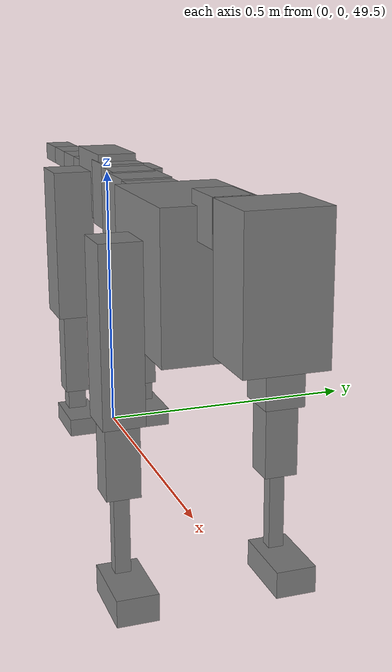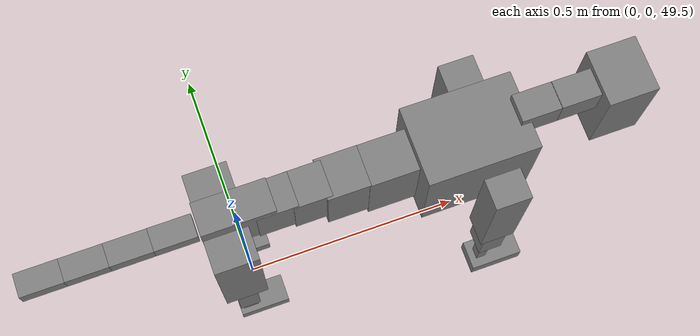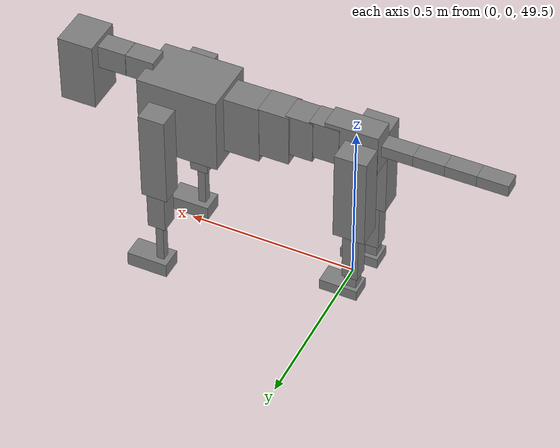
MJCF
<mujoco model="dog">

    <default>
        <joint armature="0.02" stiffness="1" damping="0.2" limited="true"/>
        <geom condim="3" friction="1 0.05 0.05" margin="0.01"/>
        <motor ctrllimited="true" ctrlrange="-1.0 1.0" forcelimited="true" gear="50"/>
    </default>

    <compiler inertiafromgeom="true" angle="radian"/>

    <option timestep="0.016" iterations="50" tolerance="1e-10" solver="Newton" jacobian="dense" cone="pyramidal"/>

    <size nconmax="20000" njmax="60000" nstack="5000000"/>
    <visual>
        <map force="0.1" zfar="30"/>
        <rgba haze="0.15 0.25 0.35 1"/>
        <quality shadowsize="2048"/>
        <global offwidth="800" offheight="800"/>
    </visual>

    <asset>
        <texture type="skybox" builtin="gradient" rgb1="0.3 0.5 0.7" rgb2="0 0 0" width="512" height="512"/>
        <texture name="texplane" type="2d" builtin="checker" rgb1=".2 .3 .4" rgb2=".1 0.15 0.2" width="512" height="512"
                 mark="cross" markrgb=".8 .8 .8"/>
        <texture name="texgeom" type="cube" builtin="flat" mark="cross" width="127" height="1278" rgb1="0.8 0.6 0.4"
                 rgb2="0.8 0.6 0.4" markrgb="1 1 1" random="0.01"/>

        <material name="matplane" reflectance="0.3" texture="texplane" texrepeat="1 1" texuniform="true"/>
        <material name="matgeom" texture="texgeom" texuniform="true" rgba="0.8 0.6 .4 1"/>
    </asset>

    <worldbody>
        <geom name="floor" pos="0 0 0" size="0 0 .25" type="plane" material="matplane" condim="3"/>

        <light directional="false" diffuse=".2 .2 .2" specular="0 0 0" pos="0 0 5" dir="0 0 -1" castshadow="false"/>
        <light mode="targetbodycom" target="torso" directional="false" diffuse=".8 .8 .8" specular="0.3 0.3 0.3"
               pos="0 0 4.0" dir="0 0 -1"/>

        <body name="root" pos="0 0 50">
            <freejoint name="root_1"/>
            <geom type="box" pos="0 0 -0.02" size="0.0774  0.0358  0.063" density="2030"/>

            <body name="spine1" pos="0.054 0 0">
                <joint name="spine1_y" axis="0 1 0" range="0 0.7" limited="true"/>
                <geom type="box" pos="0.02375 0 -0.03" size="0.04375  0.0375  0.05985" density="2030"/>

                <body name="spine2" pos="0.0612 0 0">
                    <joint name="spine2_y" axis="0 1 0" range="-0.15 0.15" limited="true"/>
                    <geom type="box" pos="0.03555  0  -0.04" size="0.04055  0.039  0.06615" density="2030"/>

                    <body name="spine3" pos="0.0730 0 0">
                        <joint name="spine3_y" axis="0 1 0" range="-0.15 0.15" limited="true"/>
                        <geom type="box" pos="0.03555  0  -0.057" size="0.04555  0.0445  0.081" density="2030"/>

                        <body name="spine4" pos="0.0780 0 0">
                            <joint name="spine4_y" axis="0 1 0" range="-0.15 0.15" limited="true"/>
                            <geom type="box" pos="0.05265  0  -0.07" size="0.05265  0.045  0.09135" density="2030"/>

                            <body name="torso" pos="0.1082 0 0">
                                <joint name="torso_y" axis="0 1 0" range="-0.15 0.15" limited="true"/>
                                <geom type="box" pos="0.11925  0  -0.085" size="0.11925  0.085  0.11745"
                                      density="2030"/>

                                <body name="neck1" pos="0.2160  0   0.0180">
                                    <joint name="neck1_y" axis="0 1 0" range="-1.2  -1" limited="true"/>
                                    <geom type="box" pos="0.0423  0  0" size="0.0423  0.03  0.036" density="2325"/>

                                    <body name="neck2" pos="0.0853  0  0">
                                        <joint name="neck2_y" axis="0 1 0" range="0.1  0" limited="true"/>
                                        <geom type="box" pos="0.0423  0  0" size="0.0423  0.03  0.036" density="2325"/>

                                        <body name="head" pos="0.0853  0  0">
                                            <joint name="head_y" axis="0 1 0" range="-0.3  -0.2" limited="true"/>
                                            <geom type="box" pos="0.0531  0  -0.055" size="0.0531  0.06  0.1044"
                                                  density="4030"/>

                                        </body>
                                    </body>
                                </body>

                                <body name="front_shoulder" pos="0.156  0   -0.0480">
                                    <joint name="front_shoulder_y" axis="0 1 0" range="-1 1.5" limited="true"/>
                                    <geom type="box" pos="0 0.13 -0.1145" size="0.0390  0.0333  0.1411" density="1158"/>
                                    <geom type="box" pos="0 -0.13 -0.1145" size="0.0390  0.0333  0.1411"
                                          density="1158"/>

                                    <body name="front_elbow" pos="0  0  -0.2290">
                                        <joint name="front_elbow_y" axis="0 1 0" range="-2 0" limited="true"/>
                                        <geom type="box" pos="0 0.13 -0.0727" size="0.0269  0.0275  0.0727"
                                              density="1081"/>
                                        <geom type="box" pos="0 -0.13 -0.0727" size="0.0269  0.0275  0.0727"
                                              density="1081"/>

                                        <body name="front_wrist" pos="0  0  -0.1454">
                                            <joint name="front_wrist_y" axis="0 1 0" range="-0.2 0" limited="true"/>
                                            <geom type="box" pos="0 0.13 -0.0728" size="0.0115  0.0128  0.0859"
                                                  density="1664"/>
                                            <geom type="box" pos="0 -0.13 -0.0728" size="0.0115  0.0128  0.0859"
                                                  density="1664"/>

                                            <body name="front_finger_end" pos="0  0  -0.1456">
                                                <joint name="front_finger_y" axis="0 1 0" range="-0.4 1"
                                                       limited="true"/>
                                                <geom type="box" pos="0.0335  0.13  -0.0074"
                                                      size="0.0615  0.0335  0.0224" density="1515"/>
                                                <geom type="box" pos="0.0335  -0.13  -0.0074"
                                                      size="0.0615  0.0335  0.0224" density="1515"/>

                                            </body>

                                        </body>
                                    </body>
                                </body>

                            </body>
                        </body>
                    </body>
                </body>
            </body>

            <body name="back_hip" pos="-0.03 0 -0.018">
                <joint name="back_hip_y" axis="0 1 0" range="-1.5 0.3" limited="true"/>
                <geom type="box" pos="0 0.07 -0.1187" size="0.0465  0.0364  0.1415" density="1154"/>
                <geom type="box" pos="0 -0.07 -0.1187" size="0.0465  0.0364  0.1415" density="1154"/>

                <body name="back_knee" pos="0  0  -0.2374">
                    <joint name="back_knee_y" axis="0 1 0" range="0 2.8" limited="true"/>
                    <geom type="box" pos="0 0.07 -0.0826" size="0.0234  0.0230  0.0982" density="1227"/>
                    <geom type="box" pos="0 -0.07 -0.0826" size="0.0234  0.0230  0.0982" density="1227"/>

                    <body name="back_ankle" pos="0  0  -0.1653">
                        <joint name="back_ankle_y" axis="0 1 0" range="-2.2 0" limited="true"/>
                        <geom type="box" pos="0 0.07 -0.0336" size="0.0174  0.0174  0.0449" density="1284"/>
                        <geom type="box" pos="0 -0.07 -0.0336" size="0.0174  0.0174  0.0449" density="1284"/>

                        <body name="back_toe_end" pos="0  0  -0.0672">
                            <joint name="back_toe_y" axis="0 1 0" range="-0.4 1" limited="true"/>
                            <geom type="box" pos="0.0307  0.07  -0.0017" size="0.0563  0.0307  0.0167" density="1515"/>
                            <geom type="box" pos="0.0307  -0.07  -0.0017" size="0.0563  0.0307  0.0167" density="1515"/>

                        </body>
                    </body>
                </body>
            </body>

            <body name="tail1" pos="-0.074 0 -0.006">
                <joint name="tail1_y" axis="0 1 0" range="-0.2 0.2" limited="true"/>
                <geom type="box" pos="-0.0536  0  0" size="0.045  0.025  0.0175" density="1587"/>

                <body name="tail2" pos="-0.09 0 0">
                    <joint name="tail2_y" axis="0 1 0" range="-0.2 0.2" limited="true"/>
                    <geom type="box" pos="-0.0536  0  0" size="0.045  0.025  0.0175" density="1587"/>

                    <body name="tail3" pos="-0.09 0 0">
                        <joint name="tail3_y" axis="0 1 0" range="-0.2 0.2" limited="true"/>
                        <geom type="box" pos="-0.0536  0  0" size="0.045  0.025  0.0175" density="1587"/>

                        <body name="tail4" pos="-0.09 0 0">
                            <joint name="tail4_y" axis="0 1 0" range="-0.2 0.2" limited="true"/>
                            <geom type="box" pos="-0.0536  0  0" size="0.045  0.025  0.0175" density="1587"/>

                        </body>
                    </body>
                </body>
            </body>
        </body>
    </worldbody>

    <actuator>
        <motor joint="spine1_y" forcerange="-150 150     "/>
        <motor joint="spine2_y" forcerange="-150 150     "/>
        <motor joint="spine3_y" forcerange="-150 150     "/>
        <motor joint="spine4_y" forcerange="-150 150     "/>
        <motor joint="torso_y" forcerange="-150 150     "/>
        <motor joint="neck1_y" forcerange="-100 100       "/>
        <motor joint="neck2_y" forcerange="-100 100       "/>
        <motor joint="head_y" forcerange="-150 150       "/>
        <motor joint="front_shoulder_y" forcerange="-140.31 181.78"/>
        <motor joint="front_elbow_y" forcerange="-159.80 139.95"/>
        <motor joint="front_wrist_y" forcerange="-51.55 50.87"/>
        <motor joint="front_finger_y" forcerange="-40.23 98.59"/>
        <motor joint="back_hip_y" forcerange="-337.14 348.66"/>
        <motor joint="back_knee_y" forcerange="-295.07 240.19"/>
        <motor joint="back_angle_y" forcerange="-101.92 77.02"/>
        <motor joint="back_toe_y" forcerange="-27.66 137.98"/>
        <motor joint="tail1_y" forcerange="-50 50     "/>
        <motor joint="tail2_y" forcerange="-50 50     "/>
        <motor joint="tail3_y" forcerange="-50 50     "/>
        <motor joint="tail4_y" forcerange="-50 50     "/>
    </actuator>
</mujoco>
